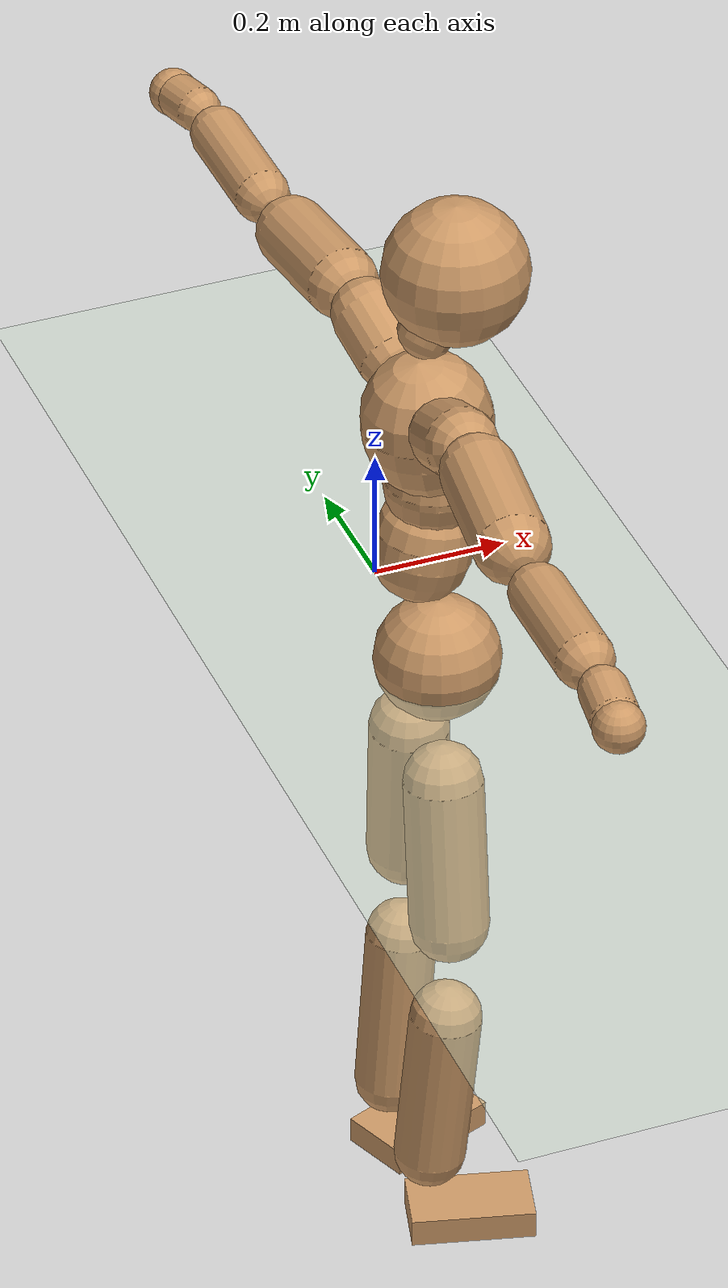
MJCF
<mujoco model="humanoid">
  <compiler coordinate="local"/>
  <default>
    <joint damping="0.0" armature="0.01" stiffness="0.0" limited="true"/>
    <geom conaffinity="1" condim="3" contype="7" margin="0.001" rgba="0.8 0.6 .4 1"/>
  </default>
  <asset>
    <texture type="skybox" builtin="gradient" rgb1=".4 .5 .6" rgb2="0 0 0" width="100" height="100"/>
    <texture builtin="flat" height="1278" mark="cross" markrgb="1 1 1" name="texgeom" random="0.01" rgb1="0.8 0.6 0.4" rgb2="0.8 0.6 0.4" type="cube" width="127"/>
    <texture builtin="checker" height="100" name="texplane" rgb1="0 0 0" rgb2="0.8 0.8 0.8" type="2d" width="100"/>
    <material name="MatPlane" reflectance="0.5" shininess="1" specular="1" texrepeat="60 60" texture="texplane"/>
    <material name="geom" texture="texgeom" texuniform="true"/>
  </asset>
  <worldbody>
    <light cutoff="100" diffuse="1 1 1" dir="-0 0 -1.3" directional="true" exponent="1" pos="0 0 1.3" specular=".1 .1 .1"/>
    <geom conaffinity="1" condim="3" name="floor" pos="0 0 0" rgba="0.8 0.9 0.8 1" size="100 100 .2" type="plane" material="MatPlane"/>
    <body name="Pelvis" pos="-0.0023 -0.2485 0.0212">
      <freejoint name="Pelvis"/>
      <geom type="sphere" contype="1" conaffinity="1" density="500" size="0.0926" pos="0.0000 0.0000 0.0000" name="Pelvis"/>
      <body name="L_Hip" pos="-0.0194 0.0555 -0.0829">
        <joint name="L_Hip_x" type="hinge" pos="0 0 0" axis="1 0 0" stiffness="800" damping="80" armature="0.02" range="-180.0000 180.0000"/>
        <joint name="L_Hip_y" type="hinge" pos="0 0 0" axis="0 1 0" stiffness="800" damping="80" armature="0.02" range="-180.0000 180.0000"/>
        <joint name="L_Hip_z" type="hinge" pos="0 0 0" axis="0 0 1" stiffness="800" damping="80" armature="0.02" range="-180.0000 180.0000"/>
        <geom type="capsule" contype="1" conaffinity="1" density="500" fromto="0.0024 0.0094 -0.0798 0.0095 0.0376 -0.3192" size="0.059" name="L_Hip"/>
        <body name="L_Knee" pos="0.0118 0.047 -0.3991">
          <joint name="L_Knee_x" type="hinge" pos="0 0 0" axis="1 0 0" stiffness="800" damping="80" armature="0.02" range="-180.0000 180.0000"/>
          <joint name="L_Knee_y" type="hinge" pos="0 0 0" axis="0 1 0" stiffness="800" damping="80" armature="0.02" range="-180.0000 180.0000"/>
          <joint name="L_Knee_z" type="hinge" pos="0 0 0" axis="0 0 1" stiffness="800" damping="80" armature="0.02" range="-180.0000 180.0000"/>
          <geom type="capsule" contype="1" conaffinity="1" density="500" fromto="-0.0071 -0.0027 -0.0870 -0.0284 -0.0109 -0.3480" size="0.0529" name="L_Knee"/>
          <body name="L_Ankle" pos="-0.0355 -0.0136 -0.435">
            <joint name="L_Ankle_x" type="hinge" pos="0 0 0" axis="1 0 0" stiffness="800" damping="80" armature="0.02" range="-180.0000 180.0000"/>
            <joint name="L_Ankle_y" type="hinge" pos="0 0 0" axis="0 1 0" stiffness="800" damping="80" armature="0.02" range="-180.0000 180.0000"/>
            <joint name="L_Ankle_z" type="hinge" pos="0 0 0" axis="0 0 1" stiffness="800" damping="80" armature="0.02" range="-180.0000 180.0000"/>
            <geom type="box" contype="1" conaffinity="1" density="500" pos="0.0610 0.0237 -0.0311" size="0.0876 0.0544 0.0207" quat="0.9829 0.0000 0.0000 0.1840" name="L_Ankle"/>
            <body name="L_Toe" pos="0.122 0.0474 -0.0622">
              <joint name="L_Toe_x" type="hinge" pos="0 0 0" axis="1 0 0" stiffness="500" damping="50" armature="0.02" range="-180.0000 180.0000"/>
              <joint name="L_Toe_y" type="hinge" pos="0 0 0" axis="0 1 0" stiffness="500" damping="50" armature="0.02" range="-180.0000 180.0000"/>
              <joint name="L_Toe_z" type="hinge" pos="0 0 0" axis="0 0 1" stiffness="500" damping="50" armature="0.02" range="-180.0000 180.0000"/>
              <geom type="box" contype="1" conaffinity="1" density="500" pos="0.0000 0.0000 0.0321" size="0.0011 0.0026 0.0011" quat="0.9821 0.0000 0.0000 0.1882" name="L_Toe"/>
            </body>
          </body>
        </body>
      </body>
      <body name="R_Hip" pos="-0.0164 -0.0566 -0.091">
        <joint name="R_Hip_x" type="hinge" pos="0 0 0" axis="1 0 0" stiffness="800" damping="80" armature="0.02" range="-180.0000 180.0000"/>
        <joint name="R_Hip_y" type="hinge" pos="0 0 0" axis="0 1 0" stiffness="800" damping="80" armature="0.02" range="-180.0000 180.0000"/>
        <joint name="R_Hip_z" type="hinge" pos="0 0 0" axis="0 0 1" stiffness="800" damping="80" armature="0.02" range="-180.0000 180.0000"/>
        <geom type="capsule" contype="1" conaffinity="1" density="500" fromto="-0.0003 -0.0094 -0.0789 -0.0012 -0.0377 -0.3158" size="0.0584" name="R_Hip"/>
        <body name="R_Knee" pos="-0.0014 -0.0471 -0.3947">
          <joint name="R_Knee_x" type="hinge" pos="0 0 0" axis="1 0 0" stiffness="800" damping="80" armature="0.02" range="-180.0000 180.0000"/>
          <joint name="R_Knee_y" type="hinge" pos="0 0 0" axis="0 1 0" stiffness="800" damping="80" armature="0.02" range="-180.0000 180.0000"/>
          <joint name="R_Knee_z" type="hinge" pos="0 0 0" axis="0 0 1" stiffness="800" damping="80" armature="0.02" range="-180.0000 180.0000"/>
          <geom type="capsule" contype="1" conaffinity="1" density="500" fromto="-0.0065 0.0037 -0.0857 -0.0261 0.0149 -0.3427" size="0.0533" name="R_Knee"/>
          <body name="R_Ankle" pos="-0.0327 0.0187 -0.4283">
            <joint name="R_Ankle_x" type="hinge" pos="0 0 0" axis="1 0 0" stiffness="800" damping="80" armature="0.02" range="-180.0000 180.0000"/>
            <joint name="R_Ankle_y" type="hinge" pos="0 0 0" axis="0 1 0" stiffness="800" damping="80" armature="0.02" range="-180.0000 180.0000"/>
            <joint name="R_Ankle_z" type="hinge" pos="0 0 0" axis="0 0 1" stiffness="800" damping="80" armature="0.02" range="-180.0000 180.0000"/>
            <geom type="box" contype="1" conaffinity="1" density="500" pos="0.0656 -0.0175 -0.0322" size="0.0919 0.0504 0.0218" quat="0.9915 0.0000 0.0000 -0.1304" name="R_Ankle"/>
            <body name="R_Toe" pos="0.1311 -0.0351 -0.0644">
              <joint name="R_Toe_x" type="hinge" pos="0 0 0" axis="1 0 0" stiffness="500" damping="50" armature="0.02" range="-180.0000 180.0000"/>
              <joint name="R_Toe_y" type="hinge" pos="0 0 0" axis="0 1 0" stiffness="500" damping="50" armature="0.02" range="-180.0000 180.0000"/>
              <joint name="R_Toe_z" type="hinge" pos="0 0 0" axis="0 0 1" stiffness="500" damping="50" armature="0.02" range="-180.0000 180.0000"/>
              <geom type="box" contype="1" conaffinity="1" density="500" pos="0.0000 0.0000 0.0329" size="0.001 0.0025 0.0011" quat="0.9926 0.0000 0.0000 -0.1215" name="R_Toe"/>
            </body>
          </body>
        </body>
      </body>
      <body name="Torso" pos="-0.0344 0.0044 0.1246">
        <joint name="Torso_x" type="hinge" pos="0 0 0" axis="1 0 0" stiffness="1000" damping="100" armature="0.02" range="-180.0000 180.0000"/>
        <joint name="Torso_y" type="hinge" pos="0 0 0" axis="0 1 0" stiffness="1000" damping="100" armature="0.02" range="-180.0000 180.0000"/>
        <joint name="Torso_z" type="hinge" pos="0 0 0" axis="0 0 1" stiffness="1000" damping="100" armature="0.02" range="-180.0000 180.0000"/>
        <geom type="capsule" contype="1" conaffinity="1" density="500" fromto="0.0178 0.0031 0.0872 0.0118 0.0020 0.0581" size="0.071982" name="Torso"/>
        <body name="Spine" pos="0.0296 0.0051 0.1453">
          <joint name="Spine_x" type="hinge" pos="0 0 0" axis="1 0 0" stiffness="1000" damping="100" armature="0.02" range="-180.0000 180.0000"/>
          <joint name="Spine_y" type="hinge" pos="0 0 0" axis="0 1 0" stiffness="1000" damping="100" armature="0.02" range="-180.0000 180.0000"/>
          <joint name="Spine_z" type="hinge" pos="0 0 0" axis="0 0 1" stiffness="1000" damping="100" armature="0.02" range="-180.0000 180.0000"/>
          <geom type="capsule" contype="1" conaffinity="1" density="500" fromto="0.0007 -0.0013 0.0352 0.0005 -0.0009 0.0234" size="0.071331" name="Spine"/>
          <body name="Chest" pos="0.0012 -0.0021 0.0586">
            <joint name="Chest_x" type="hinge" pos="0 0 0" axis="1 0 0" stiffness="1000" damping="100" armature="0.02" range="-180.0000 180.0000"/>
            <joint name="Chest_y" type="hinge" pos="0 0 0" axis="0 1 0" stiffness="1000" damping="100" armature="0.02" range="-180.0000 180.0000"/>
            <joint name="Chest_z" type="hinge" pos="0 0 0" axis="0 0 1" stiffness="1000" damping="100" armature="0.02" range="-180.0000 180.0000"/>
            <geom type="capsule" contype="1" conaffinity="1" density="500" fromto="-0.0140 -0.0050 0.0885 -0.0093 -0.0033 0.0590" size="0.093465" name="Chest"/>
            <body name="Neck" pos="-0.0267 -0.0128 0.2154">
              <joint name="Neck_x" type="hinge" pos="0 0 0" axis="1 0 0" stiffness="500" damping="50" armature="0.02" range="-180.0000 180.0000"/>
              <joint name="Neck_y" type="hinge" pos="0 0 0" axis="0 1 0" stiffness="500" damping="50" armature="0.02" range="-180.0000 180.0000"/>
              <joint name="Neck_z" type="hinge" pos="0 0 0" axis="0 0 1" stiffness="500" damping="50" armature="0.02" range="-180.0000 180.0000"/>
              <geom type="capsule" contype="1" conaffinity="1" density="500" fromto="0.0113 0.0021 0.0197 0.0451 0.0084 0.0786" size="0.041943" name="Neck"/>
              <body name="Head" pos="0.0564 0.0105 0.0983">
                <joint name="Head_x" type="hinge" pos="0 0 0" axis="1 0 0" stiffness="500" damping="50" armature="0.02" range="-180.0000 180.0000"/>
                <joint name="Head_y" type="hinge" pos="0 0 0" axis="0 1 0" stiffness="500" damping="50" armature="0.02" range="-180.0000 180.0000"/>
                <joint name="Head_z" type="hinge" pos="0 0 0" axis="0 0 1" stiffness="500" damping="50" armature="0.02" range="-180.0000 180.0000"/>
                <geom type="sphere" contype="1" conaffinity="1" density="500" size="0.1048" pos="0.0000 0.0000 0.0000" name="Head"/>
              </body>
            </body>
            <body name="L_Thorax" pos="-0.0196 0.0722 0.1145">
              <joint name="L_Thorax_x" type="hinge" pos="0 0 0" axis="1 0 0" stiffness="500" damping="50" armature="0.02" range="-180.0000 180.0000"/>
              <joint name="L_Thorax_y" type="hinge" pos="0 0 0" axis="0 1 0" stiffness="500" damping="50" armature="0.02" range="-180.0000 180.0000"/>
              <joint name="L_Thorax_z" type="hinge" pos="0 0 0" axis="0 0 1" stiffness="500" damping="50" armature="0.02" range="-180.0000 180.0000"/>
              <geom type="capsule" contype="1" conaffinity="1" density="500" fromto="-0.0035 0.0243 0.0097 -0.0141 0.0971 0.0388" size="0.0521" name="L_Thorax"/>
              <body name="L_Shoulder" pos="-0.0176 0.1213 0.0485">
                <joint name="L_Shoulder_x" type="hinge" pos="0 0 0" axis="1 0 0" stiffness="500" damping="50" armature="0.02" range="-720.0000 720.0000"/>
                <joint name="L_Shoulder_y" type="hinge" pos="0 0 0" axis="0 1 0" stiffness="500" damping="50" armature="0.02" range="-720.0000 720.0000"/>
                <joint name="L_Shoulder_z" type="hinge" pos="0 0 0" axis="0 0 1" stiffness="500" damping="50" armature="0.02" range="-720.0000 720.0000"/>
                <geom type="capsule" contype="1" conaffinity="1" density="500" fromto="-0.0042 0.0535 -0.0036 -0.0169 0.2141 -0.0145" size="0.053" name="L_Shoulder"/>
                <body name="L_Elbow" pos="-0.0211 0.2676 -0.0182">
                  <joint name="L_Elbow_x" type="hinge" pos="0 0 0" axis="1 0 0" stiffness="500" damping="50" armature="0.02" range="-720.0000 720.0000"/>
                  <joint name="L_Elbow_y" type="hinge" pos="0 0 0" axis="0 1 0" stiffness="500" damping="50" armature="0.02" range="-720.0000 720.0000"/>
                  <joint name="L_Elbow_z" type="hinge" pos="0 0 0" axis="0 0 1" stiffness="500" damping="50" armature="0.02" range="-720.0000 720.0000"/>
                  <geom type="capsule" contype="1" conaffinity="1" density="500" fromto="-0.0018 0.0542 0.0026 -0.0070 0.2168 0.0106" size="0.0412" name="L_Elbow"/>
                  <body name="L_Wrist" pos="-0.0088 0.271 0.0132">
                    <joint name="L_Wrist_x" type="hinge" pos="0 0 0" axis="1 0 0" stiffness="300" damping="30" armature="0.02" range="-180.0000 180.0000"/>
                    <joint name="L_Wrist_y" type="hinge" pos="0 0 0" axis="0 1 0" stiffness="300" damping="30" armature="0.02" range="-180.0000 180.0000"/>
                    <joint name="L_Wrist_z" type="hinge" pos="0 0 0" axis="0 0 1" stiffness="300" damping="30" armature="0.02" range="-180.0000 180.0000"/>
                    <geom type="capsule" contype="1" conaffinity="1" density="500" fromto="-0.0031 0.0173 -0.0021 -0.0125 0.0693 -0.0084" size="0.0339" name="L_Wrist"/>
                    <body name="L_Hand" pos="-0.0157 0.0866 -0.0106">
                      <joint name="L_Hand_x" type="hinge" pos="0 0 0" axis="1 0 0" stiffness="300" damping="30" armature="0.02" range="-180.0000 180.0000"/>
                      <joint name="L_Hand_y" type="hinge" pos="0 0 0" axis="0 1 0" stiffness="300" damping="30" armature="0.02" range="-180.0000 180.0000"/>
                      <joint name="L_Hand_z" type="hinge" pos="0 0 0" axis="0 0 1" stiffness="300" damping="30" armature="0.02" range="-180.0000 180.0000"/>
                      <geom type="sphere" contype="1" conaffinity="1" density="500" size="0.0355" pos="0.0000 0.0000 0.0000" name="L_Hand"/>
                    </body>
                  </body>
                </body>
              </body>
            </body>
            <body name="R_Thorax" pos="-0.0238 -0.0844 0.1128">
              <joint name="R_Thorax_x" type="hinge" pos="0 0 0" axis="1 0 0" stiffness="500" damping="50" armature="0.02" range="-180.0000 180.0000"/>
              <joint name="R_Thorax_y" type="hinge" pos="0 0 0" axis="0 1 0" stiffness="500" damping="50" armature="0.02" range="-180.0000 180.0000"/>
              <joint name="R_Thorax_z" type="hinge" pos="0 0 0" axis="0 0 1" stiffness="500" damping="50" armature="0.02" range="-180.0000 180.0000"/>
              <geom type="capsule" contype="1" conaffinity="1" density="500" fromto="-0.0014 -0.0226 0.0099 -0.0057 -0.0905 0.0396" size="0.0525" name="R_Thorax"/>
              <body name="R_Shoulder" pos="-0.0071 -0.1132 0.0496">
                <joint name="R_Shoulder_x" type="hinge" pos="0 0 0" axis="1 0 0" stiffness="500" damping="50" armature="0.02" range="-720.0000 720.0000"/>
                <joint name="R_Shoulder_y" type="hinge" pos="0 0 0" axis="0 1 0" stiffness="500" damping="50" armature="0.02" range="-720.0000 720.0000"/>
                <joint name="R_Shoulder_z" type="hinge" pos="0 0 0" axis="0 0 1" stiffness="500" damping="50" armature="0.02" range="-720.0000 720.0000"/>
                <geom type="capsule" contype="1" conaffinity="1" density="500" fromto="-0.0056 -0.0543 -0.0037 -0.0224 -0.2171 -0.0147" size="0.0542" name="R_Shoulder"/>
                <body name="R_Elbow" pos="-0.028 -0.2714 -0.0183">
                  <joint name="R_Elbow_x" type="hinge" pos="0 0 0" axis="1 0 0" stiffness="500" damping="50" armature="0.02" range="-720.0000 720.0000"/>
                  <joint name="R_Elbow_y" type="hinge" pos="0 0 0" axis="0 1 0" stiffness="500" damping="50" armature="0.02" range="-720.0000 720.0000"/>
                  <joint name="R_Elbow_z" type="hinge" pos="0 0 0" axis="0 0 1" stiffness="500" damping="50" armature="0.02" range="-720.0000 720.0000"/>
                  <geom type="capsule" contype="1" conaffinity="1" density="500" fromto="-0.0013 -0.0555 0.0020 -0.0050 -0.2219 0.0079" size="0.042" name="R_Elbow"/>
                  <body name="R_Wrist" pos="-0.0063 -0.2774 0.0099">
                    <joint name="R_Wrist_x" type="hinge" pos="0 0 0" axis="1 0 0" stiffness="300" damping="30" armature="0.02" range="-180.0000 180.0000"/>
                    <joint name="R_Wrist_y" type="hinge" pos="0 0 0" axis="0 1 0" stiffness="300" damping="30" armature="0.02" range="-180.0000 180.0000"/>
                    <joint name="R_Wrist_z" type="hinge" pos="0 0 0" axis="0 0 1" stiffness="300" damping="30" armature="0.02" range="-180.0000 180.0000"/>
                    <geom type="capsule" contype="1" conaffinity="1" density="500" fromto="-0.0021 -0.0178 -0.0017 -0.0083 -0.0711 -0.0068" size="0.0346" name="R_Wrist"/>
                    <body name="R_Hand" pos="-0.0104 -0.0889 -0.0086">
                      <joint name="R_Hand_x" type="hinge" pos="0 0 0" axis="1 0 0" stiffness="300" damping="30" armature="0.02" range="-180.0000 180.0000"/>
                      <joint name="R_Hand_y" type="hinge" pos="0 0 0" axis="0 1 0" stiffness="300" damping="30" armature="0.02" range="-180.0000 180.0000"/>
                      <joint name="R_Hand_z" type="hinge" pos="0 0 0" axis="0 0 1" stiffness="300" damping="30" armature="0.02" range="-180.0000 180.0000"/>
                      <geom type="sphere" contype="1" conaffinity="1" density="500" size="0.0361" pos="0.0000 0.0000 0.0000" name="R_Hand"/>
                    </body>
                  </body>
                </body>
              </body>
            </body>
          </body>
        </body>
      </body>
    </body>
  </worldbody>
  <actuator>
    <motor name="L_Hip_x" joint="L_Hip_x" gear="500"/>
    <motor name="L_Hip_y" joint="L_Hip_y" gear="500"/>
    <motor name="L_Hip_z" joint="L_Hip_z" gear="500"/>
    <motor name="L_Knee_x" joint="L_Knee_x" gear="500"/>
    <motor name="L_Knee_y" joint="L_Knee_y" gear="500"/>
    <motor name="L_Knee_z" joint="L_Knee_z" gear="500"/>
    <motor name="L_Ankle_x" joint="L_Ankle_x" gear="500"/>
    <motor name="L_Ankle_y" joint="L_Ankle_y" gear="500"/>
    <motor name="L_Ankle_z" joint="L_Ankle_z" gear="500"/>
    <motor name="L_Toe_x" joint="L_Toe_x" gear="500"/>
    <motor name="L_Toe_y" joint="L_Toe_y" gear="500"/>
    <motor name="L_Toe_z" joint="L_Toe_z" gear="500"/>
    <motor name="R_Hip_x" joint="R_Hip_x" gear="500"/>
    <motor name="R_Hip_y" joint="R_Hip_y" gear="500"/>
    <motor name="R_Hip_z" joint="R_Hip_z" gear="500"/>
    <motor name="R_Knee_x" joint="R_Knee_x" gear="500"/>
    <motor name="R_Knee_y" joint="R_Knee_y" gear="500"/>
    <motor name="R_Knee_z" joint="R_Knee_z" gear="500"/>
    <motor name="R_Ankle_x" joint="R_Ankle_x" gear="500"/>
    <motor name="R_Ankle_y" joint="R_Ankle_y" gear="500"/>
    <motor name="R_Ankle_z" joint="R_Ankle_z" gear="500"/>
    <motor name="R_Toe_x" joint="R_Toe_x" gear="500"/>
    <motor name="R_Toe_y" joint="R_Toe_y" gear="500"/>
    <motor name="R_Toe_z" joint="R_Toe_z" gear="500"/>
    <motor name="Torso_x" joint="Torso_x" gear="500"/>
    <motor name="Torso_y" joint="Torso_y" gear="500"/>
    <motor name="Torso_z" joint="Torso_z" gear="500"/>
    <motor name="Spine_x" joint="Spine_x" gear="500"/>
    <motor name="Spine_y" joint="Spine_y" gear="500"/>
    <motor name="Spine_z" joint="Spine_z" gear="500"/>
    <motor name="Chest_x" joint="Chest_x" gear="500"/>
    <motor name="Chest_y" joint="Chest_y" gear="500"/>
    <motor name="Chest_z" joint="Chest_z" gear="500"/>
    <motor name="Neck_x" joint="Neck_x" gear="500"/>
    <motor name="Neck_y" joint="Neck_y" gear="500"/>
    <motor name="Neck_z" joint="Neck_z" gear="500"/>
    <motor name="Head_x" joint="Head_x" gear="500"/>
    <motor name="Head_y" joint="Head_y" gear="500"/>
    <motor name="Head_z" joint="Head_z" gear="500"/>
    <motor name="L_Thorax_x" joint="L_Thorax_x" gear="500"/>
    <motor name="L_Thorax_y" joint="L_Thorax_y" gear="500"/>
    <motor name="L_Thorax_z" joint="L_Thorax_z" gear="500"/>
    <motor name="L_Shoulder_x" joint="L_Shoulder_x" gear="500"/>
    <motor name="L_Shoulder_y" joint="L_Shoulder_y" gear="500"/>
    <motor name="L_Shoulder_z" joint="L_Shoulder_z" gear="500"/>
    <motor name="L_Elbow_x" joint="L_Elbow_x" gear="500"/>
    <motor name="L_Elbow_y" joint="L_Elbow_y" gear="500"/>
    <motor name="L_Elbow_z" joint="L_Elbow_z" gear="500"/>
    <motor name="L_Wrist_x" joint="L_Wrist_x" gear="500"/>
    <motor name="L_Wrist_y" joint="L_Wrist_y" gear="500"/>
    <motor name="L_Wrist_z" joint="L_Wrist_z" gear="500"/>
    <motor name="L_Hand_x" joint="L_Hand_x" gear="500"/>
    <motor name="L_Hand_y" joint="L_Hand_y" gear="500"/>
    <motor name="L_Hand_z" joint="L_Hand_z" gear="500"/>
    <motor name="R_Thorax_x" joint="R_Thorax_x" gear="500"/>
    <motor name="R_Thorax_y" joint="R_Thorax_y" gear="500"/>
    <motor name="R_Thorax_z" joint="R_Thorax_z" gear="500"/>
    <motor name="R_Shoulder_x" joint="R_Shoulder_x" gear="500"/>
    <motor name="R_Shoulder_y" joint="R_Shoulder_y" gear="500"/>
    <motor name="R_Shoulder_z" joint="R_Shoulder_z" gear="500"/>
    <motor name="R_Elbow_x" joint="R_Elbow_x" gear="500"/>
    <motor name="R_Elbow_y" joint="R_Elbow_y" gear="500"/>
    <motor name="R_Elbow_z" joint="R_Elbow_z" gear="500"/>
    <motor name="R_Wrist_x" joint="R_Wrist_x" gear="500"/>
    <motor name="R_Wrist_y" joint="R_Wrist_y" gear="500"/>
    <motor name="R_Wrist_z" joint="R_Wrist_z" gear="500"/>
    <motor name="R_Hand_x" joint="R_Hand_x" gear="500"/>
    <motor name="R_Hand_y" joint="R_Hand_y" gear="500"/>
    <motor name="R_Hand_z" joint="R_Hand_z" gear="500"/>
  </actuator>
  <contact>
    <exclude body1="Torso" body2="Chest"/>
    <exclude body1="Head" body2="Chest"/>
    <exclude body1="R_Knee" body2="R_Toe"/>
    <exclude body1="R_Knee" body2="L_Ankle"/>
    <exclude body1="R_Knee" body2="L_Toe"/>
    <exclude body1="L_Knee" body2="L_Toe"/>
    <exclude body1="L_Knee" body2="R_Ankle"/>
    <exclude body1="L_Knee" body2="R_Toe"/>
    <exclude body1="L_Shoulder" body2="Chest"/>
    <exclude body1="R_Shoulder" body2="Chest"/>
  </contact>
  <sensor/>
  <size njmax="700" nconmax="700"/>
</mujoco>
